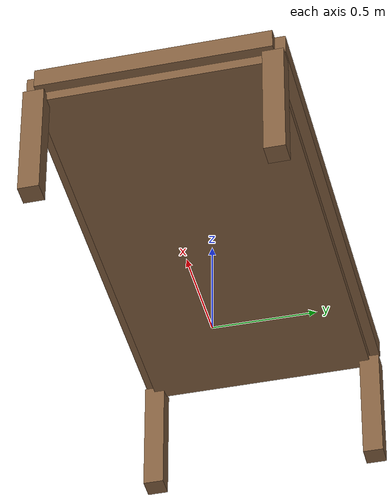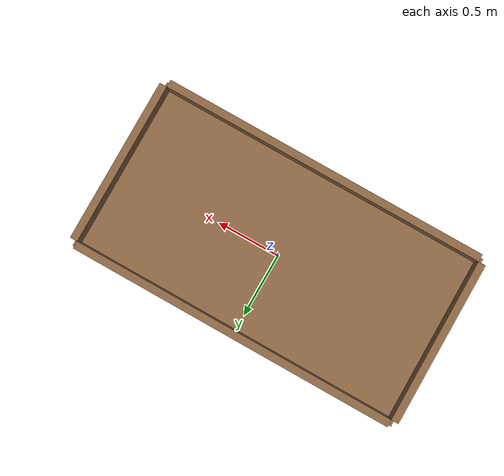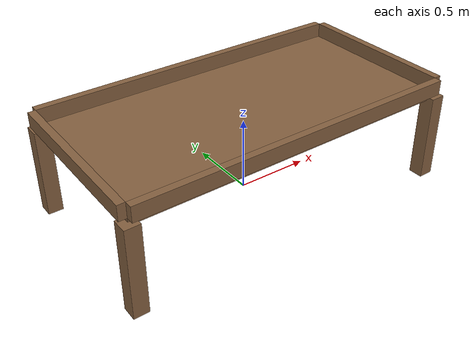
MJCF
<mujoco model="table">
    <compiler angle="radian" balanceinertia="true"/>

    <worldbody>
        <body name="table" pos="0.0 0.0 0.6">

            <body name="left_side_table" pos="0.0 -0.5850000000000001 0.05">
                <geom name="left_side" type="box" size="1.12 0.025 0.05" rgba="0.52 0.38 0.25 1"/>
            </body><!-- Left side -->

            <body name="right_side_table" pos="0.0 0.5850000000000001 0.05">
                <geom name="right_side" type="box" size="1.12 0.025 0.05" rgba="0.52 0.38 0.25 1"/>
            </body><!-- Right side -->

            <body name="front_side_table" pos="1.145 0.0 0.05">
                <geom name="front_side" type="box" size="0.025 0.56 0.05" rgba="0.52 0.38 0.25 1"/>
            </body><!-- Front side -->

            <body name="back_side_table" pos="-1.145 0.0 0.05">
                <geom name="back_side" type="box" size="0.025 0.56 0.05" rgba="0.52 0.38 0.25 1"/>
            </body><!-- Back side -->

            <body name="base_table" pos="0.0 0.0 -0.025">
                <geom name="base_surface" type="box" size="1.12 0.56 0.025" friction="1 0.005 0.0001" rgba="0.52 0.38 0.25 1"/>
            </body><!-- Base -->

            <body name="table_legs" pos="0.0 0.0 -0.6">

                <body name="left_top_leg" pos="1.12 0.56 0.27499999999999997">
                    <geom name="left_top_leg" type="box" size="0.05 0.05 0.3" rgba="0.52 0.38 0.25 1"/>
                </body><!-- left_top_leg -->

                <body name="right_top_leg" pos="1.12 -0.56 0.27499999999999997">
                    <geom name="right_top_leg" type="box" size="0.05 0.05 0.3" rgba="0.52 0.38 0.25 1"/>
                </body><!-- right_top_leg -->

                <body name="left_bottom_leg" pos="-1.12 0.56 0.27499999999999997">
                    <geom name="left_bottom_leg" type="box" size="0.05 0.05 0.3" rgba="0.52 0.38 0.25 1"/>
                </body><!-- left_bottom_leg -->

                <body name="right_bottom_leg" pos="-1.12 -0.56 0.27499999999999997">
                    <geom name="right_bottom_leg" type="box" size="0.05 0.05 0.3" rgba="0.52 0.38 0.25 1"/>
                </body><!-- right_bottom_leg -->

            </body><!-- Legs -->

        </body> <!-- Table -->
    </worldbody>

</mujoco>
